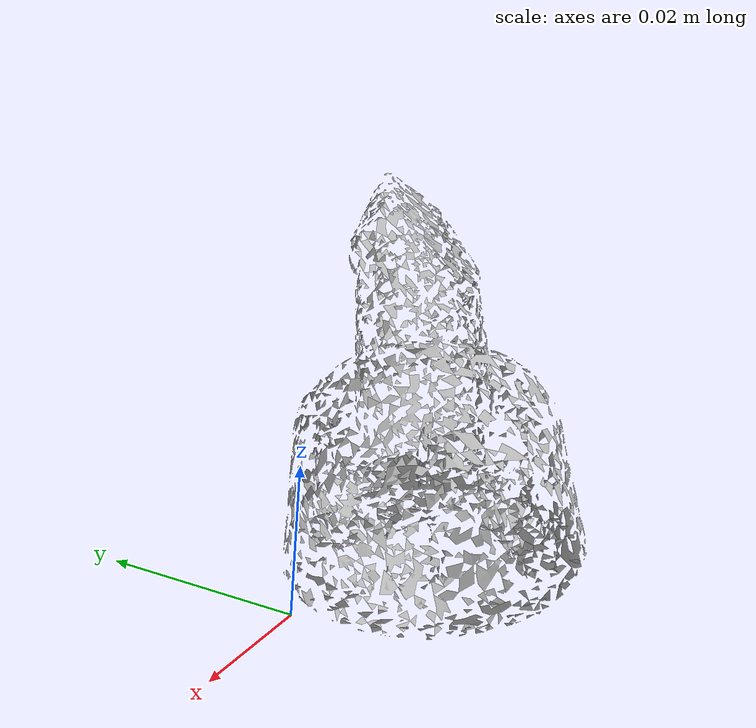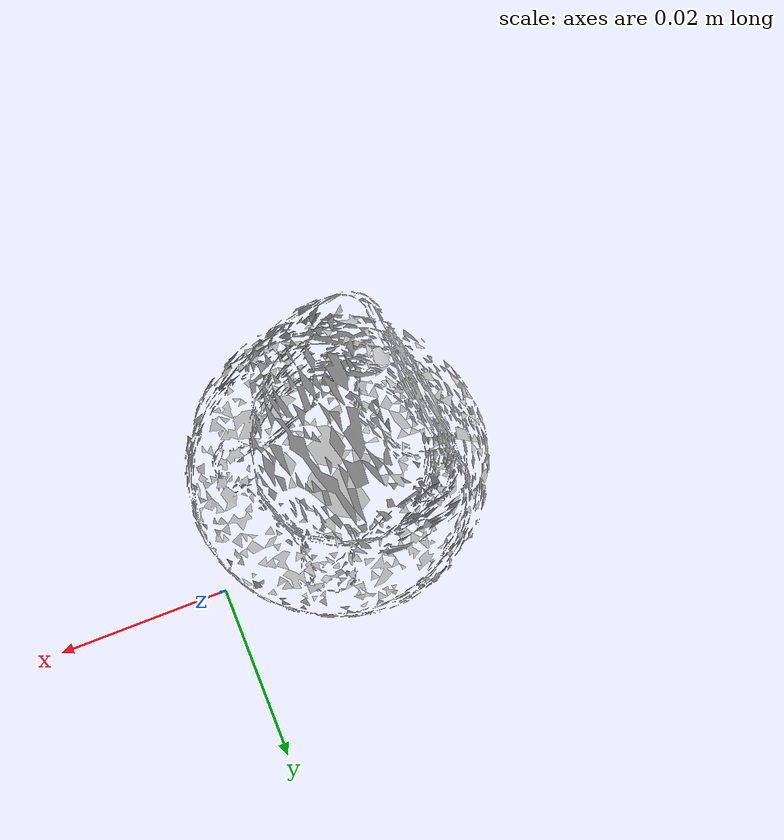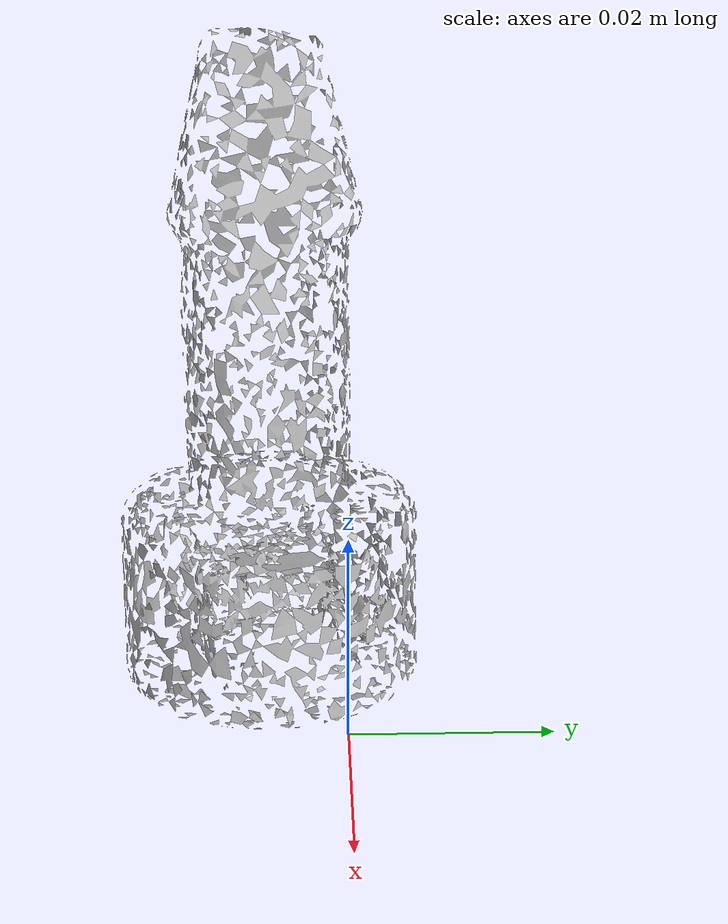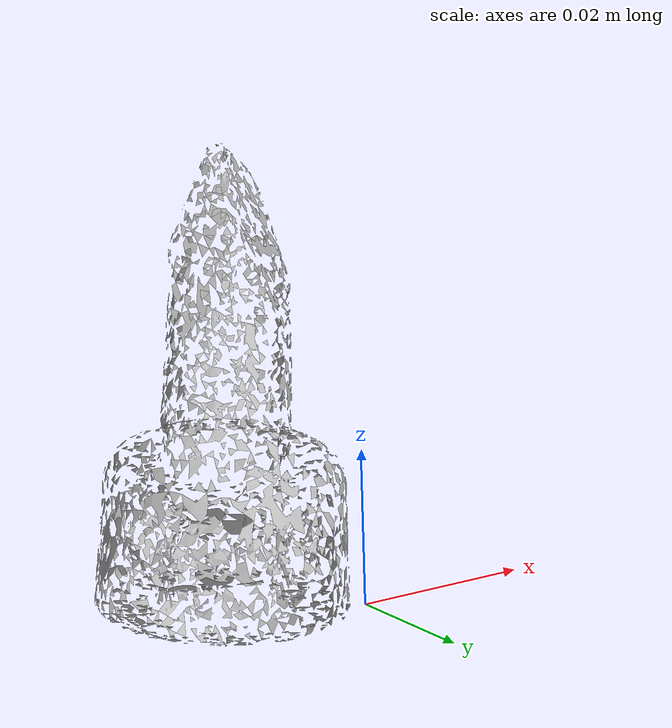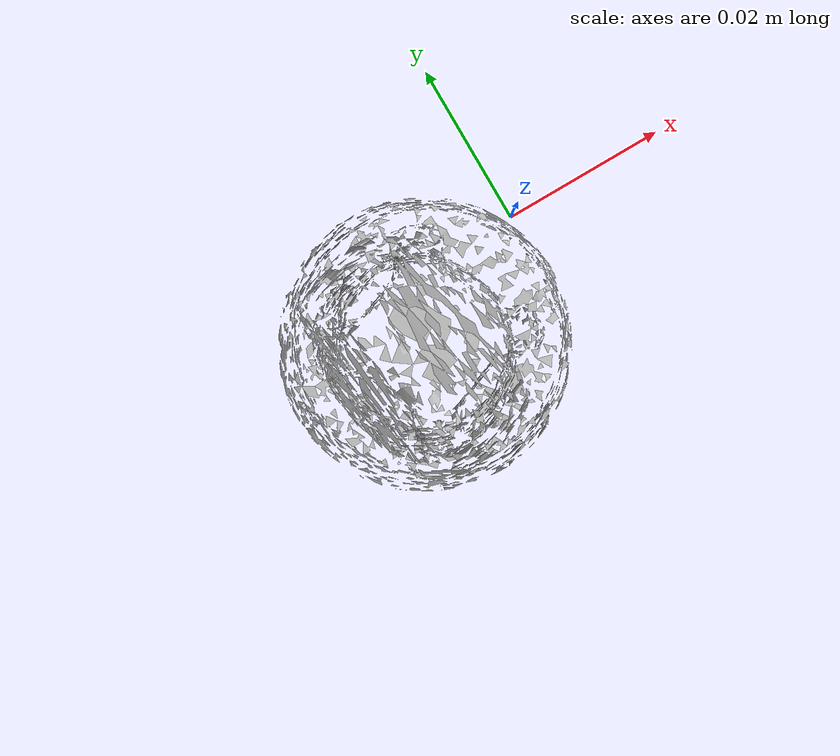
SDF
<?xml version='1.0'?>
<sdf version="1.4">
  <model name="e_toy_airplane">
    <static>false</static>
    <link name="link">
      <inertial>
        <pose>-0.015461052619458251 -0.007752454040306524 0.021859940254387186 3.138280811092283 -0.010403554231041707 -2.964347618856298</pose>
        <mass>1.8408711748142497e-05</mass>
        <inertia>
          <ixx>5.511554416878706e-09</ixx>
          <ixy>-2.457648570523617e-25</ixy>
          <ixz>-1.3976840478141475e-25</ixz>
          <iyy>5.4688798701743145e-09</iyy>
          <iyz>9.687865722666957e-25</iyz>
          <izz>1.688958445105133e-09</izz>
        </inertia>
      </inertial>
      <collision name="collision">
        <geometry>
          <mesh>
            <!-- Use a downsampled mesh for collisions -->
            <uri>model://072-e_toy_airplane/downsampled.obj</uri>
	        </mesh>
        </geometry>
        <surface>
      </surface>
      </collision>
      <visual name="visual">
        <geometry>
          <mesh>
            <uri>model://072-e_toy_airplane/google_16k/textured.obj</uri>
	        </mesh>
        </geometry>
        <material>
          <script>
            <uri>model://072-e_toy_airplane/e_toy_airplane.material</uri>
            <name>e_toy_airplane</name>
          </script>
        </material>
      </visual>
    </link>
  </model>
</sdf>
